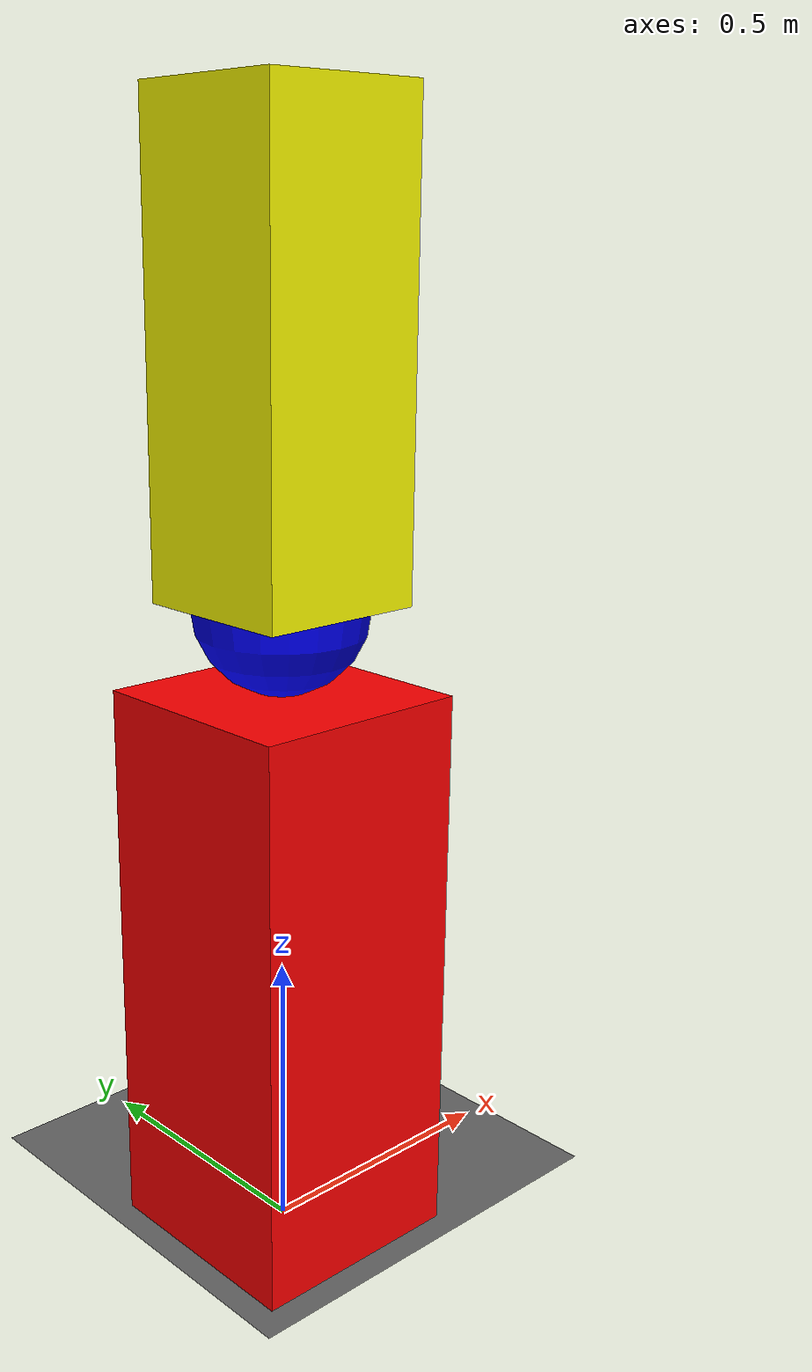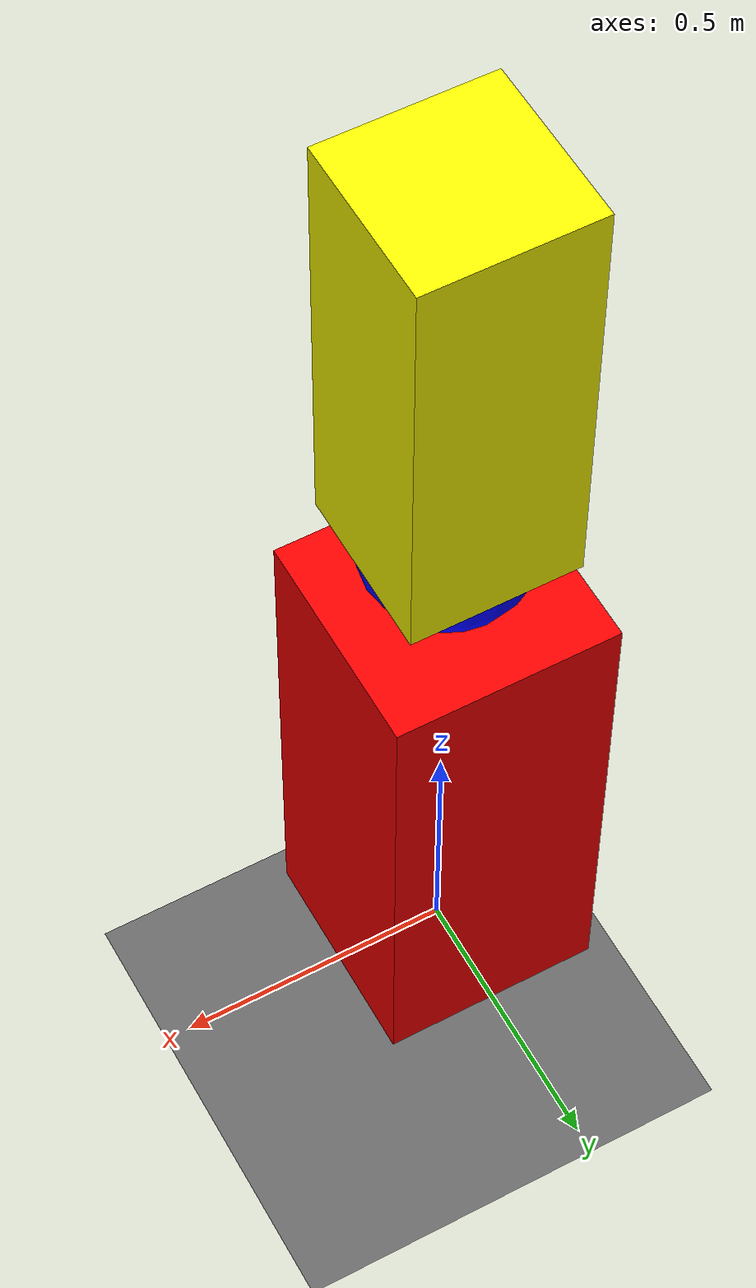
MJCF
<mujoco>
  <option timestep="0.01"/>
  <include file="./common/materials.xml"/>
  <worldbody>

    <light name="light" pos="0 0 3"/>
    <camera name="fixed" pos="0 -3 3" xyaxes="1 0 0 0 1 1"/>
    <geom name="floor" type="plane" size="5 5 0.1" pos="0 0 0" rgba="0.4 0.4 0.4 1" material="motphys-ground"/>

    <body name="base" pos="0 0 0.5">
      <body name="arm_A" pos="0 0 0">
        <joint name="joint_A" type="hinge" axis="0 0 1" limited="true" range = "-90 90"/>
        <geom name="cube_A" type="box" size="0.2 0.2 0.5" pos="0 0 0" rgba="1 0 0 1"/>

        <body name="arm_B" pos="0 0 0.65">
          <joint name="joint_B" type="hinge" axis="0 1 0" limited="true" range = "-30 30"/>
          <geom name="sphere" type="sphere" size="0.15" pos="0 0 0" rgba="0 0 1 1"/>

          <body name="arm_C" pos="0 0 0">
            <joint name="joint_C" type="hinge" axis="0 1 0" limited="true" range = "-10 10"/>
            <geom name="cube_C" type="box" size="0.15 0.15 0.4" pos="0 0 0.4" rgba="1 1 0 1"/>
          </body>
        </body>
      </body>
    </body>
  </worldbody>

  <actuator>
    <motor name="actuator_A" joint="joint_A" gear="100"/>
    <motor name="actuator_B" joint="joint_B" gear="100"/>
    <motor name="actuator_C" joint="joint_C" gear="1000" ctrlrange = "-0.5 0.5"/>
  </actuator>
</mujoco>

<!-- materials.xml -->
<!--
Common textures, colors and materials to be used throughout this suite. Some
materials such as xxx_highlight are activated on occurence of certain events,
for example receiving a positive reward.
-->
<mujoco>
  <asset>
    <texture name="motphys-ground" type="2d" file="motphys-ground.png" />
    <material name="motphys-ground" texture="motphys-ground" texuniform="true"
      texrepeat="0.4 0.4" />
  </asset>
</mujoco>
